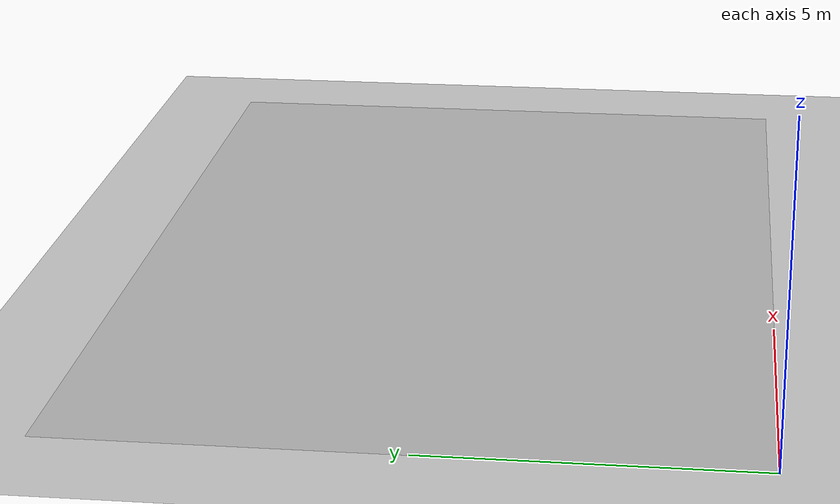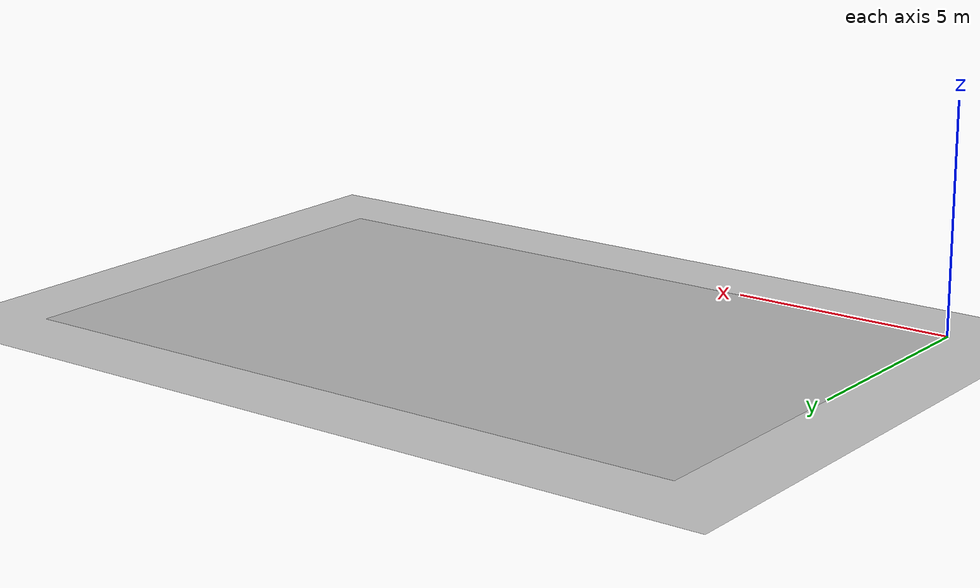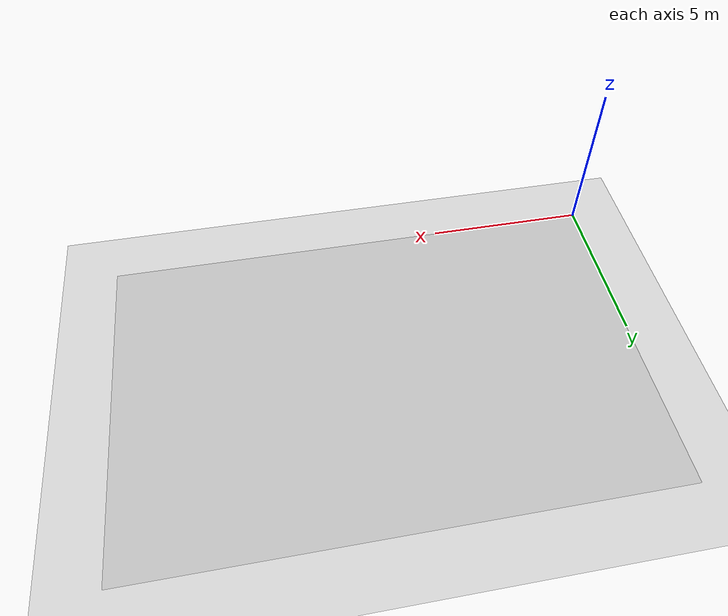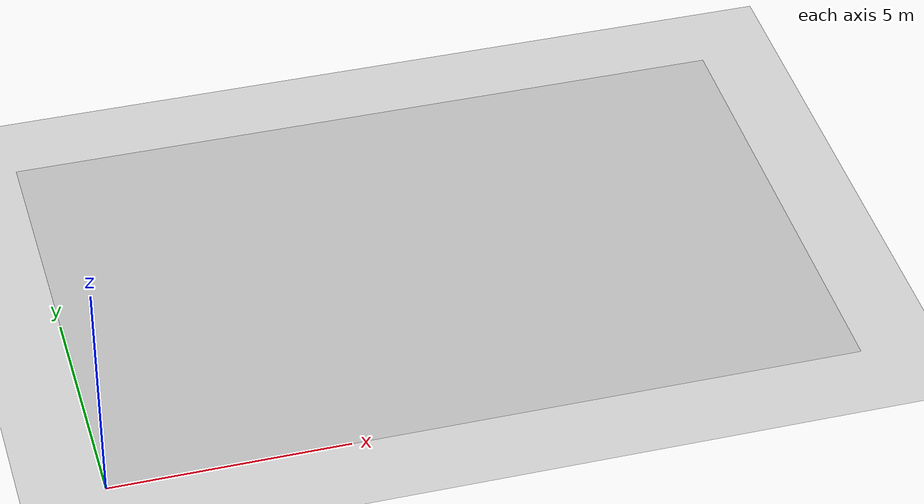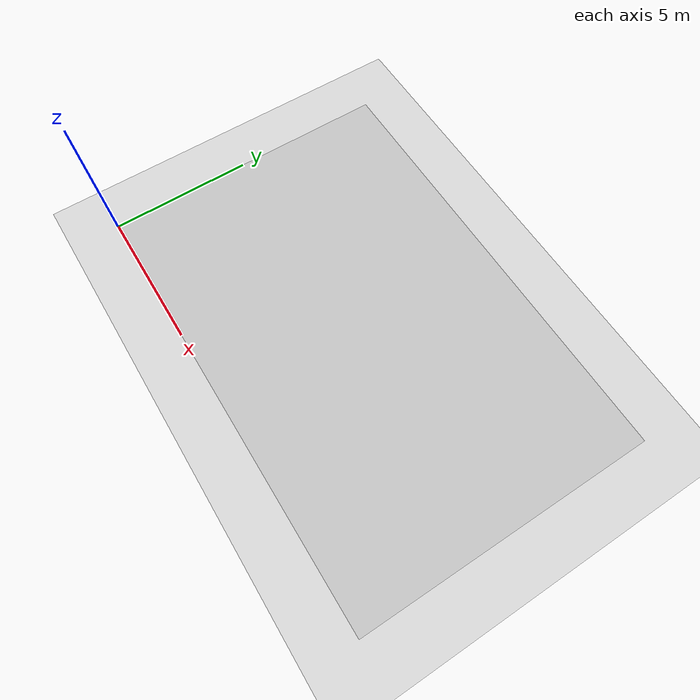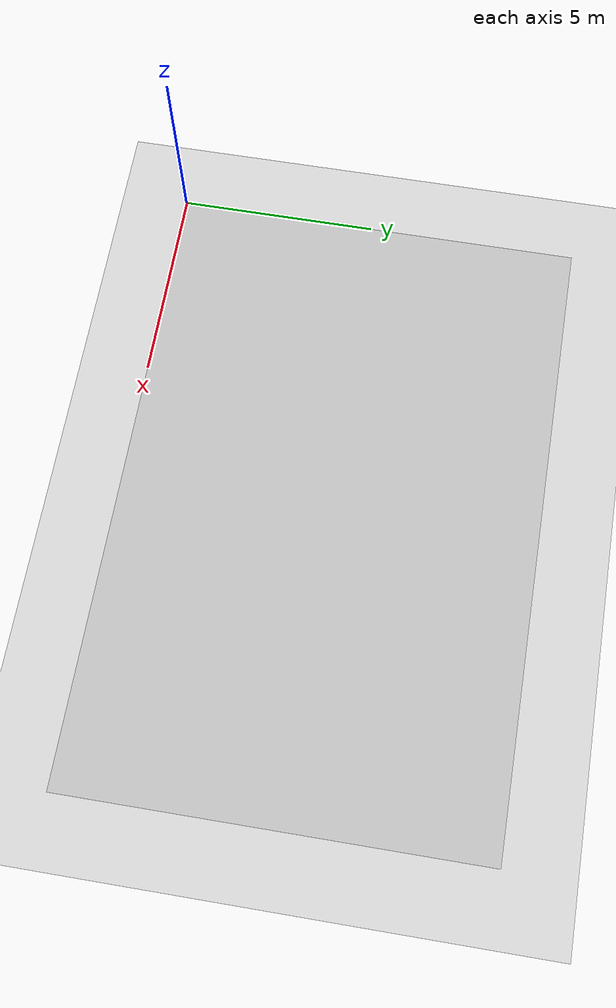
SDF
<?xml version="1.0"?>
<sdf version="1.4">
<world name="basic_track">
<scene>
<ambient>0.5 0.5 0.5 1.0</ambient>
<shadows>0</shadows>
<sky></sky>
</scene>
<include>
<uri>model://ground_plane</uri>
</include>
<include>
<uri>model://sun</uri>
<pose>0.0 0.0 15.0 0 0 0</pose>
<cast_shadows>false</cast_shadows>
<attenuation>
<constant>0.5</constant>
<linear>0.01</linear>
<quadratic>0.0</quadratic>
<range>100</range>
</attenuation>
</include>
<light type="point" name="Light 1">
<pose>0 0 15 0 0 0</pose>
<diffuse>.9 .9 .9 1</diffuse>
<specular>.1 .1 .1 1</specular>
<attenuation>
<constant>0.4</constant>
<linear>0.01</linear>
<quadratic>0.00</quadratic>
<range>50</range>
</attenuation>
<direction>0 0 -1</direction>
<cast_shadows>false</cast_shadows>
</light>
<include>
<uri>model://models/basic_track</uri>
<pose>0 0 0 0 0 0</pose>
<name>racetrack</name>
</include>
</world>
</sdf>

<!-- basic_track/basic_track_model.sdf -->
<sdf version="1.4">
<model name="Basic_track_model">
<link name="fullLink">
<collision name="collision">
<pose>0 0 0 0 0 0</pose>
<geometry>
<mesh>
<uri>model://meshes/basic_track/basic_track.dae</uri>
</mesh>
</geometry>
</collision>
<visual name="visual">
<pose>0 0 0 0 0 0</pose>
<geometry>
<mesh>
<uri>model://meshes/basic_track/basic_track.dae</uri>
</mesh>
</geometry>
</visual>
</link>
<static>1</static>
</model>
</sdf>
